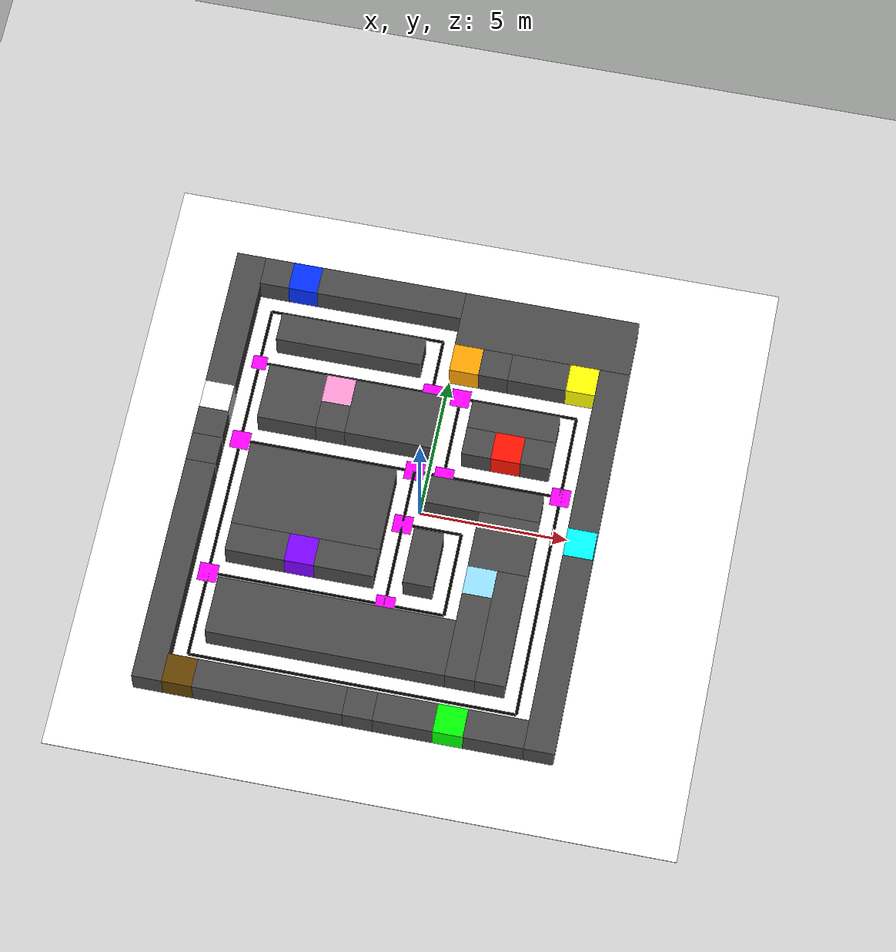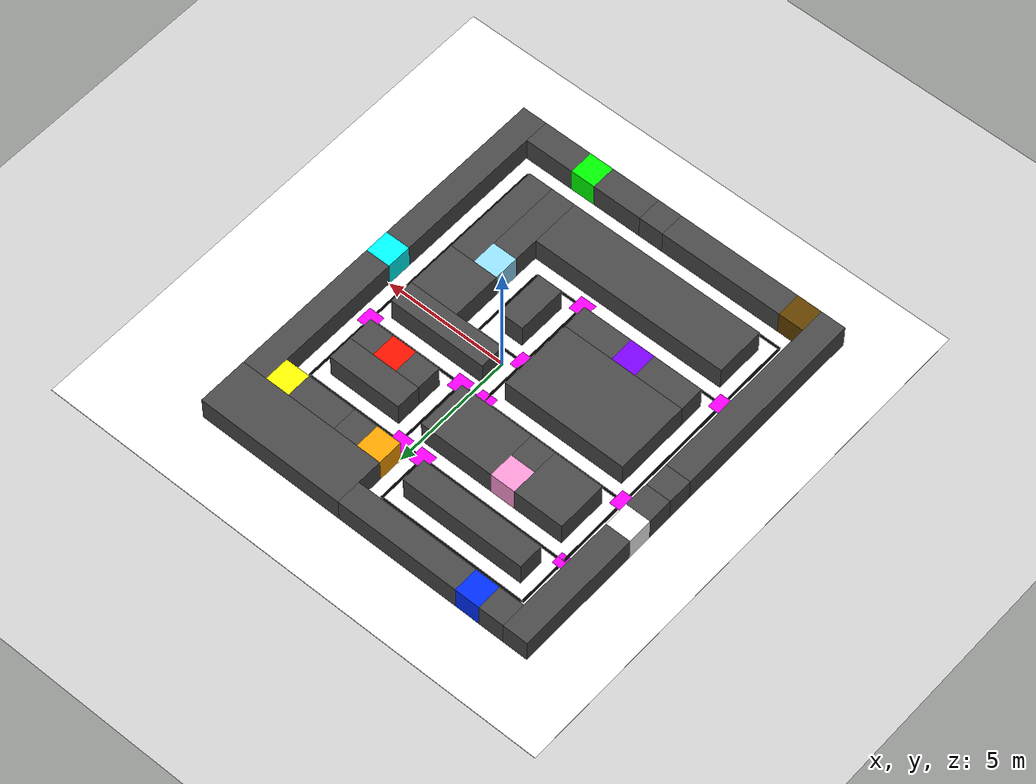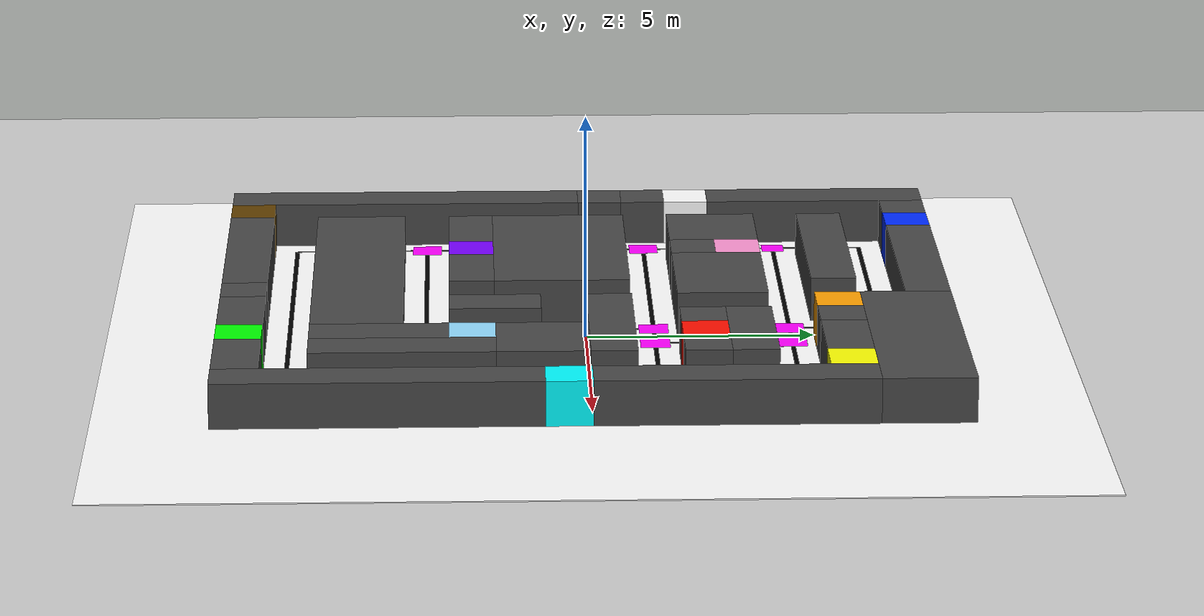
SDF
<sdf version="1.10">
 <world name="hello_world">
  <model name="ground_plane">
   <static>true</static>
   <link name="link">
    <collision name="collision">
     <geometry><plane><normal>0 0 1</normal><size>100 100</size></plane></geometry>
    </collision>
    <visual name="visual">
     <geometry><plane><normal>0 0 1</normal><size>100 100</size></plane></geometry>
     <material>
      <ambient>0.800000012 0.800000012 0.800000012 1</ambient>
      <diffuse>0.800000012 0.800000012 0.800000012 1</diffuse>
      <specular>0.800000012 0.800000012 0.800000012 1</specular>
     </material>
    </visual>
    <inertial>
     <mass>1</mass>
     <inertia><ixx>1</ixx><ixy>0</ixy><ixz>0</ixz><iyy>1</iyy><iyz>0</iyz><izz>1</izz></inertia>
    </inertial>
   </link>
  </model>
  <model name="box">
   <pose>-7.5 5.5 0.5 0 0 0</pose>
   <link name="box_link">
    <inertial>
     <inertia><ixx>0.16666</ixx><ixy>0</ixy><ixz>0</ixz><iyy>0.16666</iyy><iyz>0</iyz><izz>0.16666</izz></inertia>
     <mass>1</mass>
    </inertial>
    <collision name="box_collision"><geometry><box><size>1 5 1</size></box></geometry></collision>
    <visual name="box_visual">
     <geometry><box><size>1 5 1</size></box></geometry>
     <material>
      <ambient>0.300000012 0.300000012 0.300000012 1</ambient>
      <diffuse>0.277999997 0.277999997 0.277999997 1</diffuse>
      <specular>1 1 1 1</specular>
     </material>
    </visual>
   </link>
   <static>true</static>
  </model>
  <model name="PO">
   <pose>-7.5 2.5 0.5 0 0 0</pose>
   <link name="box_link">
    <inertial>
     <inertia><ixx>0.16666</ixx><ixy>0</ixy><ixz>0</ixz><iyy>0.16666</iyy><iyz>0</iyz><izz>0.16666</izz></inertia>
     <mass>1</mass>
    </inertial>
    <collision name="box_collision"><geometry><box><size>1 1 1</size></box></geometry></collision>
    <visual name="box_visual">
     <geometry><box><size>1 1 1</size></box></geometry>
     <material>
      <ambient>0.300000012 0.300000012 0.300000012 1</ambient>
      <diffuse>1 1 1 1</diffuse>
      <specular>1 1 1 1</specular>
     </material>
    </visual>
   </link>
   <static>true</static>
  </model>
  <model name="CHARGER_0">
   <pose>-7.5 0.5 0.5 4.6034300000052197e-07 4.603870000005235e-07 6.6837400000076367e-10</pose>
   <link name="box_link">
    <inertial>
     <inertia><ixx>0.16666</ixx><ixy>0</ixy><ixz>0</ixz><iyy>0.16666</iyy><iyz>0</iyz><izz>0.16666</izz></inertia>
     <mass>1</mass>
    </inertial>
    <collision name="box_collision"><geometry><box><size>1 1 1</size></box></geometry></collision>
    <visual name="box_visual">
     <geometry><box><size>1 1 1</size></box></geometry>
     <material>
      <ambient>0.300000012 0.300000012 0.300000012 1</ambient>
      <diffuse>0.277999997 0.277999997 0.277999997 1</diffuse>
      <specular>1 1 1 1</specular>
     </material>
    </visual>
   </link>
   <static>true</static>
  </model>
  <model name="box_2">
   <pose>-7.5 -4 0.5 4.6034300000052197e-07 4.603870000005235e-07 6.6837400000076367e-10</pose>
   <link name="box_link">
    <inertial>
     <inertia><ixx>0.16666</ixx><ixy>0</ixy><ixz>0</ixz><iyy>0.16666</iyy><iyz>0</iyz><izz>0.16666</izz></inertia>
     <mass>1</mass>
    </inertial>
    <collision name="box_collision"><geometry><box><size>1 8 1</size></box></geometry></collision>
    <visual name="box_visual">
     <geometry><box><size>1 8 1</size></box></geometry>
     <material>
      <ambient>0.300000012 0.300000012 0.300000012 1</ambient>
      <diffuse>0.277999997 0.277999997 0.277999997 1</diffuse>
      <specular>1 1 1 1</specular>
     </material>
    </visual>
   </link>
   <static>true</static>
  </model>
  <model name="box_3">
   <pose>-6.5 7.5 0.5 4.6034300000052197e-07 4.603870000005235e-07 6.6837400000076367e-10</pose>
   <link name="box_link">
    <inertial>
     <inertia><ixx>0.16666</ixx><ixy>0</ixy><ixz>0</ixz><iyy>0.16666</iyy><iyz>0</iyz><izz>0.16666</izz></inertia>
     <mass>1</mass>
    </inertial>
    <collision name="box_collision"><geometry><box><size>1 1 1</size></box></geometry></collision>
    <visual name="box_visual">
     <geometry><box><size>1 1 1</size></box></geometry>
     <material>
      <ambient>0.300000012 0.300000012 0.300000012 1</ambient>
      <diffuse>0.277999997 0.277999997 0.277999997 1</diffuse>
      <specular>1 1 1 1</specular>
     </material>
    </visual>
   </link>
   <static>true</static>
  </model>
  <model name="HOUSE_1">
   <pose>-5.5 7.5 0.5 4.6034300000052197e-07 4.603870000005235e-07 6.6837400000076367e-10</pose>
   <link name="box_link">
    <inertial>
     <inertia><ixx>0.16666</ixx><ixy>0</ixy><ixz>0</ixz><iyy>0.16666</iyy><iyz>0</iyz><izz>0.16666</izz></inertia>
     <mass>1</mass>
    </inertial>
    <collision name="box_collision"><geometry><box><size>1 1 1</size></box></geometry></collision>
    <visual name="box_visual">
     <geometry><box><size>1 1 1</size></box></geometry>
     <material>
      <ambient>0.300000012 0.300000012 0.300000012 1</ambient>
      <diffuse>0 0.172999993 1 1</diffuse>
      <specular>1 1 1 1</specular>
     </material>
    </visual>
   </link>
   <static>true</static>
  </model>
  <model name="box_5">
   <pose>-2.5 7.5 0.5 4.6034300000052197e-07 4.603870000005235e-07 6.6837400000076367e-10</pose>
   <link name="box_link">
    <inertial>
     <inertia><ixx>0.16666</ixx><ixy>0</ixy><ixz>0</ixz><iyy>0.16666</iyy><iyz>0</iyz><izz>0.16666</izz></inertia>
     <mass>1</mass>
    </inertial>
    <collision name="box_collision"><geometry><box><size>5 1 1</size></box></geometry></collision>
    <visual name="box_visual">
     <geometry><box><size>5 1 1</size></box></geometry>
     <material>
      <ambient>0.300000012 0.300000012 0.300000012 1</ambient>
      <diffuse>0.277999997 0.277999997 0.277999997 1</diffuse>
      <specular>1 1 1 1</specular>
     </material>
    </visual>
   </link>
   <static>true</static>
  </model>
  <model name="box_6">
   <pose>3 7 0.5 0 0 0</pose>
   <link name="box_link">
    <inertial>
     <inertia><ixx>0.16666</ixx><ixy>0</ixy><ixz>0</ixz><iyy>0.16666</iyy><iyz>0</iyz><izz>0.16666</izz></inertia>
     <mass>1</mass>
    </inertial>
    <collision name="box_collision"><geometry><box><size>6 2 1</size></box></geometry></collision>
    <visual name="box_visual">
     <geometry><box><size>6 2 1</size></box></geometry>
     <material>
      <ambient>0.300000012 0.300000012 0.300000012 1</ambient>
      <diffuse>0.277999997 0.277999997 0.277999997 1</diffuse>
      <specular>1 1 1 1</specular>
     </material>
    </visual>
   </link>
   <static>true</static>
  </model>
  <model name="box_7">
   <pose>5.5 3 0.5 1.6937494726750003e-43 0 0</pose>
   <link name="box_link">
    <inertial>
     <inertia><ixx>0.16666</ixx><ixy>0</ixy><ixz>0</ixz><iyy>0.16666</iyy><iyz>0</iyz><izz>0.16666</izz></inertia>
     <mass>1</mass>
    </inertial>
    <collision name="box_collision"><geometry><box><size>1 6 1</size></box></geometry></collision>
    <visual name="box_visual">
     <geometry><box><size>1 6 1</size></box></geometry>
     <material>
      <ambient>0.300000012 0.300000012 0.300000012 1</ambient>
      <diffuse>0.277999997 0.277999997 0.277999997 1</diffuse>
      <specular>1 1 1 1</specular>
     </material>
    </visual>
   </link>
   <static>true</static>
  </model>
  <model name="HOUSE_6">
   <pose>5.5 -0.5 0.5 4.6840416479999999e-44 0 0</pose>
   <link name="box_link">
    <inertial>
     <inertia><ixx>0.16666</ixx><ixy>0</ixy><ixz>0</ixz><iyy>0.16666</iyy><iyz>0</iyz><izz>0.16666</izz></inertia>
     <mass>1</mass>
    </inertial>
    <collision name="box_collision"><geometry><box><size>1 1 1</size></box></geometry></collision>
    <visual name="box_visual">
     <geometry><box><size>1 1 1</size></box></geometry>
     <material>
      <ambient>0.300000012 0.300000012 0.300000012 1</ambient>
      <diffuse>0 0.984000027 1 1</diffuse>
      <specular>1 1 1 1</specular>
     </material>
    </visual>
   </link>
   <static>true</static>
  </model>
  <model name="box_9">
   <pose>5.5 -4.5 0.5 -8.9888212590000021e-45 0 0</pose>
   <link name="box_link">
    <inertial>
     <inertia><ixx>0.16666</ixx><ixy>0</ixy><ixz>0</ixz><iyy>0.16666</iyy><iyz>0</iyz><izz>0.16666</izz></inertia>
     <mass>1</mass>
    </inertial>
    <collision name="box_collision"><geometry><box><size>1 7 1</size></box></geometry></collision>
    <visual name="box_visual">
     <geometry><box><size>1 7 1</size></box></geometry>
     <material>
      <ambient>0.300000012 0.300000012 0.300000012 1</ambient>
      <diffuse>0.277999997 0.277999997 0.277999997 1</diffuse>
      <specular>1 1 1 1</specular>
     </material>
    </visual>
   </link>
   <static>true</static>
  </model>
  <model name="box_10">
   <pose>4 -7.5 0.5 0 0 0</pose>
   <link name="box_link">
    <inertial>
     <inertia><ixx>0.16666</ixx><ixy>0</ixy><ixz>0</ixz><iyy>0.16666</iyy><iyz>0</iyz><izz>0.16666</izz></inertia>
     <mass>1</mass>
    </inertial>
    <collision name="box_collision"><geometry><box><size>2 1 1</size></box></geometry></collision>
    <visual name="box_visual">
     <geometry><box><size>2 1 1</size></box></geometry>
     <material>
      <ambient>0.300000012 0.300000012 0.300000012 1</ambient>
      <diffuse>0.277999997 0.277999997 0.277999997 1</diffuse>
      <specular>1 1 1 1</specular>
     </material>
    </visual>
   </link>
   <static>true</static>
  </model>
  <model name="HOUSE_9">
   <pose>2.5 -7.5 0.5 0 0 0</pose>
   <link name="box_link">
    <inertial>
     <inertia><ixx>0.16666</ixx><ixy>0</ixy><ixz>0</ixz><iyy>0.16666</iyy><iyz>0</iyz><izz>0.16666</izz></inertia>
     <mass>1</mass>
    </inertial>
    <collision name="box_collision"><geometry><box><size>1 1 1</size></box></geometry></collision>
    <visual name="box_visual">
     <geometry><box><size>1 1 1</size></box></geometry>
     <material>
      <ambient>0.300000012 0.300000012 0.300000012 1</ambient>
      <diffuse>0 1 0 1</diffuse>
      <specular>1 1 1 1</specular>
     </material>
    </visual>
   </link>
   <static>true</static>
  </model>
  <model name="box_12">
   <pose>1 -7.5 0.5 0 0 0</pose>
   <link name="box_link">
    <inertial>
     <inertia><ixx>0.16666</ixx><ixy>0</ixy><ixz>0</ixz><iyy>0.16666</iyy><iyz>0</iyz><izz>0.16666</izz></inertia>
     <mass>1</mass>
    </inertial>
    <collision name="box_collision"><geometry><box><size>2 1 1</size></box></geometry></collision>
    <visual name="box_visual">
     <geometry><box><size>2 1 1</size></box></geometry>
     <material>
      <ambient>0.300000012 0.300000012 0.300000012 1</ambient>
      <diffuse>0.277999997 0.277999997 0.277999997 1</diffuse>
      <specular>1 1 1 1</specular>
     </material>
    </visual>
   </link>
   <static>true</static>
  </model>
  <model name="CHARGER_2">
   <pose>-0.5 -7.5 0.5 0 0 0</pose>
   <link name="box_link">
    <inertial>
     <inertia><ixx>0.16666</ixx><ixy>0</ixy><ixz>0</ixz><iyy>0.16666</iyy><iyz>0</iyz><izz>0.16666</izz></inertia>
     <mass>1</mass>
    </inertial>
    <collision name="box_collision"><geometry><box><size>1 1 1</size></box></geometry></collision>
    <visual name="box_visual">
     <geometry><box><size>1 1 1</size></box></geometry>
     <material>
      <ambient>0.300000012 0.300000012 0.300000012 1</ambient>
      <diffuse>0.277999997 0.277999997 0.277999997 1</diffuse>
      <specular>1 1 1 1</specular>
     </material>
    </visual>
   </link>
   <static>true</static>
  </model>
  <model name="box_14">
   <pose>-3.5 -7.5 0.5 0 0 0</pose>
   <link name="box_link">
    <inertial>
     <inertia><ixx>0.16666</ixx><ixy>0</ixy><ixz>0</ixz><iyy>0.16666</iyy><iyz>0</iyz><izz>0.16666</izz></inertia>
     <mass>1</mass>
    </inertial>
    <collision name="box_collision"><geometry><box><size>5 1 1</size></box></geometry></collision>
    <visual name="box_visual">
     <geometry><box><size>5 1 1</size></box></geometry>
     <material>
      <ambient>0.300000012 0.300000012 0.300000012 1</ambient>
      <diffuse>0.277999997 0.277999997 0.277999997 1</diffuse>
      <specular>1 1 1 1</specular>
     </material>
    </visual>
   </link>
   <static>true</static>
  </model>
  <model name="HOUSE_7">
   <pose>-6.5 -7.5 0.5 0 0 0</pose>
   <link name="box_link">
    <inertial>
     <inertia><ixx>0.16666</ixx><ixy>0</ixy><ixz>0</ixz><iyy>0.16666</iyy><iyz>0</iyz><izz>0.16666</izz></inertia>
     <mass>1</mass>
    </inertial>
    <collision name="box_collision"><geometry><box><size>1 1 1</size></box></geometry></collision>
    <visual name="box_visual">
     <geometry><box><size>1 1 1</size></box></geometry>
     <material>
      <ambient>0.300000012 0.300000012 0.300000012 1</ambient>
      <diffuse>0.379999995 0.246999994 0 1</diffuse>
      <specular>1 1 1 1</specular>
     </material>
    </visual>
   </link>
   <static>true</static>
  </model>
  <model name="box_16">
   <pose>-3.5 5.5000000000000004 0.5 0 0 0</pose>
   <link name="box_link">
    <inertial>
     <inertia><ixx>0.16666</ixx><ixy>0</ixy><ixz>0</ixz><iyy>0.16666</iyy><iyz>0</iyz><izz>0.16666</izz></inertia>
     <mass>1</mass>
    </inertial>
    <collision name="box_collision"><geometry><box><size>5 1 1</size></box></geometry></collision>
    <visual name="box_visual">
     <geometry><box><size>5 1 1</size></box></geometry>
     <material>
      <ambient>0.300000012 0.300000012 0.300000012 1</ambient>
      <diffuse>0.277999997 0.277999997 0.277999997 1</diffuse>
      <specular>1 1 1 1</specular>
     </material>
    </visual>
   </link>
   <static>true</static>
  </model>
  <model name="HOUSE_3">
   <pose>0.5 5.5 0.5 0 0 0</pose>
   <link name="box_link">
    <inertial>
     <inertia><ixx>0.16666</ixx><ixy>0</ixy><ixz>0</ixz><iyy>0.16666</iyy><iyz>0</iyz><izz>0.16666</izz></inertia>
     <mass>1</mass>
    </inertial>
    <collision name="box_collision"><geometry><box><size>1 1 1</size></box></geometry></collision>
    <visual name="box_visual">
     <geometry><box><size>1 1 1</size></box></geometry>
     <material>
      <ambient>1 0.647000015 0 1</ambient>
      <diffuse>1 0.630999982 0 1</diffuse>
      <specular>1 1 1 1</specular>
     </material>
    </visual>
   </link>
   <static>true</static>
  </model>
  <model name="CHARGER_1">
   <pose>1.5 5.5 0.5 0 0 0</pose>
   <link name="box_link">
    <inertial>
     <inertia><ixx>0.16666</ixx><ixy>0</ixy><ixz>0</ixz><iyy>0.16666</iyy><iyz>0</iyz><izz>0.16666</izz></inertia>
     <mass>1</mass>
    </inertial>
    <collision name="box_collision"><geometry><box><size>1 1 1</size></box></geometry></collision>
    <visual name="box_visual">
     <geometry><box><size>1 1 1</size></box></geometry>
     <material>
      <ambient>0.300000012 0.300000012 0.300000012 1</ambient>
      <diffuse>0.277999997 0.277999997 0.277999997 1</diffuse>
      <specular>1 1 1 1</specular>
     </material>
    </visual>
   </link>
   <static>true</static>
  </model>
  <model name="box_19">
   <pose>3 5.5 0.5 0 0 0</pose>
   <link name="box_link">
    <inertial>
     <inertia><ixx>0.16666</ixx><ixy>0</ixy><ixz>0</ixz><iyy>0.16666</iyy><iyz>0</iyz><izz>0.16666</izz></inertia>
     <mass>1</mass>
    </inertial>
    <collision name="box_collision"><geometry><box><size>2 1 1</size></box></geometry></collision>
    <visual name="box_visual">
     <geometry><box><size>2 1 1</size></box></geometry>
     <material>
      <ambient>0.300000012 0.300000012 0.300000012 1</ambient>
      <diffuse>0.277999997 0.277999997 0.277999997 1</diffuse>
      <specular>1 1 1 1</specular>
     </material>
    </visual>
   </link>
   <static>true</static>
  </model>
  <model name="HOUSE_2">
   <pose>4.5 5.5 0.5 0 0 0</pose>
   <link name="box_link">
    <inertial>
     <inertia><ixx>0.16666</ixx><ixy>0</ixy><ixz>0</ixz><iyy>0.16666</iyy><iyz>0</iyz><izz>0.16666</izz></inertia>
     <mass>1</mass>
    </inertial>
    <collision name="box_collision"><geometry><box><size>1 1 1</size></box></geometry></collision>
    <visual name="box_visual">
     <geometry><box><size>1 1 1</size></box></geometry>
     <material>
      <ambient>0.300000012 0.300000012 0.300000012 1</ambient>
      <diffuse>0.991999984 1 0 1</diffuse>
      <specular>1 1 1 1</specular>
     </material>
    </visual>
   </link>
   <static>true</static>
  </model>
  <model name="box_21">
   <pose>2.5 3.5 0.5 0 0 0</pose>
   <link name="box_link">
    <inertial>
     <inertia><ixx>0.16666</ixx><ixy>0</ixy><ixz>0</ixz><iyy>0.16666</iyy><iyz>0</iyz><izz>0.16666</izz></inertia>
     <mass>1</mass>
    </inertial>
    <collision name="box_collision"><geometry><box><size>3 1 1</size></box></geometry></collision>
    <visual name="box_visual">
     <geometry><box><size>3 1 1</size></box></geometry>
     <material>
      <ambient>0.300000012 0.300000012 0.300000012 1</ambient>
      <diffuse>0.277999997 0.277999997 0.277999997 1</diffuse>
      <specular>1 1 1 1</specular>
     </material>
    </visual>
   </link>
   <static>true</static>
  </model>
  <model name="box_22">
   <pose>3.5 2.5 0.5 0 0 0</pose>
   <link name="box_link">
    <inertial>
     <inertia><ixx>0.16666</ixx><ixy>0</ixy><ixz>0</ixz><iyy>0.16666</iyy><iyz>0</iyz><izz>0.16666</izz></inertia>
     <mass>1</mass>
    </inertial>
    <collision name="box_collision"><geometry><box><size>1 1 1</size></box></geometry></collision>
    <visual name="box_visual">
     <geometry><box><size>1 1 1</size></box></geometry>
     <material>
      <ambient>0.300000012 0.300000012 0.300000012 1</ambient>
      <diffuse>0.277999997 0.277999997 0.277999997 1</diffuse>
      <specular>1 1 1 1</specular>
     </material>
    </visual>
   </link>
   <static>true</static>
  </model>
  <model name="HOUSE_5">
   <pose>2.5 2.5 0.5 0 0 0</pose>
   <link name="box_link">
    <inertial>
     <inertia><ixx>0.16666</ixx><ixy>0</ixy><ixz>0</ixz><iyy>0.16666</iyy><iyz>0</iyz><izz>0.16666</izz></inertia>
     <mass>1</mass>
    </inertial>
    <collision name="box_collision"><geometry><box><size>1 1 1</size></box></geometry></collision>
    <visual name="box_visual">
     <geometry><box><size>1 1 1</size></box></geometry>
     <material>
      <ambient>0.300000012 0.300000012 0.300000012 1</ambient>
      <diffuse>1 0.063000001 0 1</diffuse>
      <specular>1 1 1 1</specular>
     </material>
    </visual>
   </link>
   <static>true</static>
  </model>
  <model name="box_24">
   <pose>1.5 2.5 0.5 0 0 0</pose>
   <link name="box_link">
    <inertial>
     <inertia><ixx>0.16666</ixx><ixy>0</ixy><ixz>0</ixz><iyy>0.16666</iyy><iyz>0</iyz><izz>0.16666</izz></inertia>
     <mass>1</mass>
    </inertial>
    <collision name="box_collision"><geometry><box><size>1 1 1</size></box></geometry></collision>
    <visual name="box_visual">
     <geometry><box><size>1 1 1</size></box></geometry>
     <material>
      <ambient>0.300000012 0.300000012 0.300000012 1</ambient>
      <diffuse>0.277999997 0.277999997 0.277999997 1</diffuse>
      <specular>1 1 1 1</specular>
     </material>
    </visual>
   </link>
   <static>true</static>
  </model>
  <model name="box_25">
   <pose>-1.5 3 0.5 0 0 0</pose>
   <link name="box_link">
    <inertial>
     <inertia><ixx>0.16666</ixx><ixy>0</ixy><ixz>0</ixz><iyy>0.16666</iyy><iyz>0</iyz><izz>0.16666</izz></inertia>
     <mass>1</mass>
    </inertial>
    <collision name="box_collision"><geometry><box><size>3 2 1</size></box></geometry></collision>
    <visual name="box_visual">
     <geometry><box><size>3 2 1</size></box></geometry>
     <material>
      <ambient>0.300000012 0.300000012 0.300000012 1</ambient>
      <diffuse>0.277999997 0.277999997 0.277999997 1</diffuse>
      <specular>1 1 1 1</specular>
     </material>
    </visual>
   </link>
   <static>true</static>
  </model>
  <model name="HOUSE_4">
   <pose>-3.5 3.5 0.5 0 0 0</pose>
   <link name="box_link">
    <inertial>
     <inertia><ixx>0.16666</ixx><ixy>0</ixy><ixz>0</ixz><iyy>0.16666</iyy><iyz>0</iyz><izz>0.16666</izz></inertia>
     <mass>1</mass>
    </inertial>
    <collision name="box_collision"><geometry><box><size>1 1 1</size></box></geometry></collision>
    <visual name="box_visual">
     <geometry><box><size>1 1 1</size></box></geometry>
     <material>
      <ambient>0.300000012 0.300000012 0.300000012 1</ambient>
      <diffuse>0.987999976 0.583999991 0.819999993 1</diffuse>
      <specular>1 1 1 1</specular>
     </material>
    </visual>
   </link>
   <static>true</static>
  </model>
  <model name="box_27">
   <pose>-3.5 2.5 0.5 0 0 0</pose>
   <link name="box_link">
    <inertial>
     <inertia><ixx>0.16666</ixx><ixy>0</ixy><ixz>0</ixz><iyy>0.16666</iyy><iyz>0</iyz><izz>0.16666</izz></inertia>
     <mass>1</mass>
    </inertial>
    <collision name="box_collision"><geometry><box><size>1 1 1</size></box></geometry></collision>
    <visual name="box_visual">
     <geometry><box><size>1 1 1</size></box></geometry>
     <material>
      <ambient>0.300000012 0.300000012 0.300000012 1</ambient>
      <diffuse>0.277999997 0.277999997 0.277999997 1</diffuse>
      <specular>1 1 1 1</specular>
     </material>
    </visual>
   </link>
   <static>true</static>
  </model>
  <model name="box_28">
   <pose>-5 3 0.5 0 0 0</pose>
   <link name="box_link">
    <inertial>
     <inertia><ixx>0.16666</ixx><ixy>0</ixy><ixz>0</ixz><iyy>0.16666</iyy><iyz>0</iyz><izz>0.16666</izz></inertia>
     <mass>1</mass>
    </inertial>
    <collision name="box_collision"><geometry><box><size>2 2 1</size></box></geometry></collision>
    <visual name="box_visual">
     <geometry><box><size>2 2 1</size></box></geometry>
     <material>
      <ambient>0.300000012 0.300000012 0.300000012 1</ambient>
      <diffuse>0.277999997 0.277999997 0.277999997 1</diffuse>
      <specular>1 1 1 1</specular>
     </material>
    </visual>
   </link>
   <static>true</static>
  </model>
  <model name="box_29">
   <pose>-3.5 -0.5 0.5 0 0 0</pose>
   <link name="box_link">
    <inertial>
     <inertia><ixx>0.16666</ixx><ixy>0</ixy><ixz>0</ixz><iyy>0.16666</iyy><iyz>0</iyz><izz>0.16666</izz></inertia>
     <mass>1</mass>
    </inertial>
    <collision name="box_collision"><geometry><box><size>5 3 1</size></box></geometry></collision>
    <visual name="box_visual">
     <geometry><box><size>5 3 1</size></box></geometry>
     <material>
      <ambient>0.300000012 0.300000012 0.300000012 1</ambient>
      <diffuse>0.277999997 0.277999997 0.277999997 1</diffuse>
      <specular>1 1 1 1</specular>
     </material>
    </visual>
   </link>
   <static>true</static>
  </model>
  <model name="box_30">
   <pose>-5 -2.5 0.5 0 0 0</pose>
   <link name="box_link">
    <inertial>
     <inertia><ixx>0.16666</ixx><ixy>0</ixy><ixz>0</ixz><iyy>0.16666</iyy><iyz>0</iyz><izz>0.16666</izz></inertia>
     <mass>1</mass>
    </inertial>
    <collision name="box_collision"><geometry><box><size>2 1 1</size></box></geometry></collision>
    <visual name="box_visual">
     <geometry><box><size>2 1 1</size></box></geometry>
     <material>
      <ambient>0.300000012 0.300000012 0.300000012 1</ambient>
      <diffuse>0.277999997 0.277999997 0.277999997 1</diffuse>
      <specular>1 1 1 1</specular>
     </material>
    </visual>
   </link>
   <static>true</static>
  </model>
  <model name="HOUSE_8">
   <pose>-3.5 -2.5 0.5 0 0 0</pose>
   <link name="box_link">
    <inertial>
     <inertia><ixx>0.16666</ixx><ixy>0</ixy><ixz>0</ixz><iyy>0.16666</iyy><iyz>0</iyz><izz>0.16666</izz></inertia>
     <mass>1</mass>
    </inertial>
    <collision name="box_collision"><geometry><box><size>1 1 1</size></box></geometry></collision>
    <visual name="box_visual">
     <geometry><box><size>1 1 1</size></box></geometry>
     <material>
      <ambient>0.300000012 0.300000012 0.300000012 1</ambient>
      <diffuse>0.470999986 0 1 1</diffuse>
      <specular>1 1 1 1</specular>
     </material>
    </visual>
   </link>
   <static>true</static>
  </model>
  <model name="box_32">
   <pose>-2 -2.5 0.5 0 0 0</pose>
   <link name="box_link">
    <inertial>
     <inertia><ixx>0.16666</ixx><ixy>0</ixy><ixz>0</ixz><iyy>0.16666</iyy><iyz>0</iyz><izz>0.16666</izz></inertia>
     <mass>1</mass>
    </inertial>
    <collision name="box_collision"><geometry><box><size>2 1 1</size></box></geometry></collision>
    <visual name="box_visual">
     <geometry><box><size>2 1 1</size></box></geometry>
     <material>
      <ambient>0.300000012 0.300000012 0.300000012 1</ambient>
      <diffuse>0.277999997 0.277999997 0.277999997 1</diffuse>
      <specular>1 1 1 1</specular>
     </material>
    </visual>
   </link>
   <static>true</static>
  </model>
  <model name="box_33">
   <pose>0.5 -2 0.5 0 0 0</pose>
   <link name="box_link">
    <inertial>
     <inertia><ixx>0.16666</ixx><ixy>0</ixy><ixz>0</ixz><iyy>0.16666</iyy><iyz>0</iyz><izz>0.16666</izz></inertia>
     <mass>1</mass>
    </inertial>
    <collision name="box_collision"><geometry><box><size>1 2 1</size></box></geometry></collision>
    <visual name="box_visual">
     <geometry><box><size>1 2 1</size></box></geometry>
     <material>
      <ambient>0.300000012 0.300000012 0.300000012 1</ambient>
      <diffuse>0.277999997 0.277999997 0.277999997 1</diffuse>
      <specular>1 1 1 1</specular>
     </material>
    </visual>
   </link>
   <static>true</static>
  </model>
  <model name="box_34">
   <pose>2 0.5 0.5 0 0 0</pose>
   <link name="box_link">
    <inertial>
     <inertia><ixx>0.16666</ixx><ixy>0</ixy><ixz>0</ixz><iyy>0.16666</iyy><iyz>0</iyz><izz>0.16666</izz></inertia>
     <mass>1</mass>
    </inertial>
    <collision name="box_collision"><geometry><box><size>4 1 1</size></box></geometry></collision>
    <visual name="box_visual">
     <geometry><box><size>4 1 1</size></box></geometry>
     <material>
      <ambient>0.300000012 0.300000012 0.300000012 1</ambient>
      <diffuse>0.277999997 0.277999997 0.277999997 1</diffuse>
      <specular>1 1 1 1</specular>
     </material>
    </visual>
   </link>
   <static>true</static>
  </model>
  <model name="box_35">
   <pose>3 -1 0.5 0 0 0</pose>
   <link name="box_link">
    <inertial>
     <inertia><ixx>0.16666</ixx><ixy>0</ixy><ixz>0</ixz><iyy>0.16666</iyy><iyz>0</iyz><izz>0.16666</izz></inertia>
     <mass>1</mass>
    </inertial>
    <collision name="box_collision"><geometry><box><size>2 2 1</size></box></geometry></collision>
    <visual name="box_visual">
     <geometry><box><size>2 2 1</size></box></geometry>
     <material>
      <ambient>0.300000012 0.300000012 0.300000012 1</ambient>
      <diffuse>0.277999997 0.277999997 0.277999997 1</diffuse>
      <specular>1 1 1 1</specular>
     </material>
    </visual>
   </link>
   <static>true</static>
  </model>
  <model name="box_36">
   <pose>3.5 -4 0.5 0 0 0</pose>
   <link name="box_link">
    <inertial>
     <inertia><ixx>0.16666</ixx><ixy>0</ixy><ixz>0</ixz><iyy>0.16666</iyy><iyz>0</iyz><izz>0.16666</izz></inertia>
     <mass>1</mass>
    </inertial>
    <collision name="box_collision"><geometry><box><size>1 4 1</size></box></geometry></collision>
    <visual name="box_visual">
     <geometry><box><size>1 4 1</size></box></geometry>
     <material>
      <ambient>0.300000012 0.300000012 0.300000012 1</ambient>
      <diffuse>0.277999997 0.277999997 0.277999997 1</diffuse>
      <specular>1 1 1 1</specular>
     </material>
    </visual>
   </link>
   <static>true</static>
  </model>
  <model name="box_37">
   <pose>2.5 -4.5 0.5 0 0 0</pose>
   <link name="box_link">
    <inertial>
     <inertia><ixx>0.16666</ixx><ixy>0</ixy><ixz>0</ixz><iyy>0.16666</iyy><iyz>0</iyz><izz>0.16666</izz></inertia>
     <mass>1</mass>
    </inertial>
    <collision name="box_collision"><geometry><box><size>1 3 1</size></box></geometry></collision>
    <visual name="box_visual">
     <geometry><box><size>1 3 1</size></box></geometry>
     <material>
      <ambient>0.300000012 0.300000012 0.300000012 1</ambient>
      <diffuse>0.277999997 0.277999997 0.277999997 1</diffuse>
      <specular>1 1 1 1</specular>
     </material>
    </visual>
   </link>
   <static>true</static>
  </model>
  <model name="box_38">
   <pose>-2 -5 0.5 0 0 0</pose>
   <link name="box_link">
    <inertial>
     <inertia><ixx>0.16666</ixx><ixy>0</ixy><ixz>0</ixz><iyy>0.16666</iyy><iyz>0</iyz><izz>0.16666</izz></inertia>
     <mass>1</mass>
    </inertial>
    <collision name="box_collision"><geometry><box><size>8 2 1</size></box></geometry></collision>
    <visual name="box_visual">
     <geometry><box><size>8 2 1</size></box></geometry>
     <material>
      <ambient>0.300000012 0.300000012 0.300000012 1</ambient>
      <diffuse>0.277999997 0.277999997 0.277999997 1</diffuse>
      <specular>1 1 1 1</specular>
     </material>
    </visual>
   </link>
   <static>true</static>
  </model>
  <model name="HOUSE_10">
   <pose>2.5 -2.5 0.5 0 0 0</pose>
   <link name="box_link">
    <inertial>
     <inertia><ixx>0.16666</ixx><ixy>0</ixy><ixz>0</ixz><iyy>0.16666</iyy><iyz>0</iyz><izz>0.16666</izz></inertia>
     <mass>1</mass>
    </inertial>
    <collision name="box_collision"><geometry><box><size>1 1 1</size></box></geometry></collision>
    <visual name="box_visual">
     <geometry><box><size>1 1 1</size></box></geometry>
     <material>
      <ambient>0.300000012 0.300000012 0.300000012 1</ambient>
      <diffuse>0.573000014 0.862999976 1 1</diffuse>
      <specular>1 1 1 1</specular>
     </material>
    </visual>
   </link>
   <static>true</static>
  </model>
  <model name="line_0">
   <pose>-6.5 0 0 0 0 0</pose>
   <link name="box_link">
    <inertial>
     <inertia><ixx>0.16666</ixx><ixy>0</ixy><ixz>0</ixz><iyy>0.16666</iyy><iyz>0</iyz><izz>0.16666</izz></inertia>
     <mass>1</mass>
    </inertial>
    <collision name="box_collision">
     <geometry><box><size>0.10000000000000001 13 0.025000000000000001</size></box></geometry>
    </collision>
    <visual name="box_visual">
     <geometry><box><size>0.10000000000000001 13 0.025000000000000001</size></box></geometry>
     <material>
      <ambient>0.300000012 0.300000012 0.300000012 1</ambient>
      <diffuse>0 0 0 1</diffuse>
      <specular>1 1 1 1</specular>
     </material>
    </visual>
   </link>
   <static>true</static>
  </model>
  <model name="line_1">
   <pose>-1 -6.5 0 0 0 0</pose>
   <link name="box_link">
    <inertial>
     <inertia><ixx>0.16666</ixx><ixy>0</ixy><ixz>0</ixz><iyy>0.16666</iyy><iyz>0</iyz><izz>0.16666</izz></inertia>
     <mass>1</mass>
    </inertial>
    <collision name="box_collision">
     <geometry><box><size>11 0.10000000000000001 0.025000000000000001</size></box></geometry>
    </collision>
    <visual name="box_visual">
     <geometry><box><size>11 0.10000000000000001 0.025000000000000001</size></box></geometry>
     <material>
      <ambient>0.300000012 0.300000012 0.300000012 1</ambient>
      <diffuse>0 0 0 1</diffuse>
      <specular>1 1 1 1</specular>
     </material>
    </visual>
   </link>
   <static>true</static>
  </model>
  <model name="line_2">
   <pose>4.5 -1 0 0 0 0</pose>
   <link name="box_link">
    <inertial>
     <inertia><ixx>0.16666</ixx><ixy>0</ixy><ixz>0</ixz><iyy>0.16666</iyy><iyz>0</iyz><izz>0.16666</izz></inertia>
     <mass>1</mass>
    </inertial>
    <collision name="box_collision">
     <geometry><box><size>0.10000000000000001 11 0.025000000000000001</size></box></geometry>
    </collision>
    <visual name="box_visual">
     <geometry><box><size>0.10000000000000001 11 0.025000000000000001</size></box></geometry>
     <material>
      <ambient>0.300000012 0.300000012 0.300000012 1</ambient>
      <diffuse>0 0 0 1</diffuse>
      <specular>1 1 1 1</specular>
     </material>
    </visual>
   </link>
   <static>true</static>
  </model>
  <model name="line_3">
   <pose>-1 1.5 0 0 0 0</pose>
   <link name="box_link">
    <inertial>
     <inertia><ixx>0.16666</ixx><ixy>0</ixy><ixz>0</ixz><iyy>0.16666</iyy><iyz>0</iyz><izz>0.16666</izz></inertia>
     <mass>1</mass>
    </inertial>
    <collision name="box_collision">
     <geometry><box><size>11 0.10000000000000001 0.025000000000000001</size></box></geometry>
    </collision>
    <visual name="box_visual">
     <geometry><box><size>11 0.10000000000000001 0.025000000000000001</size></box></geometry>
     <material>
      <ambient>0.300000012 0.300000012 0.300000012 1</ambient>
      <diffuse>0 0 0 1</diffuse>
      <specular>1 1 1 1</specular>
     </material>
    </visual>
   </link>
   <static>true</static>
  </model>
  <model name="line_4">
   <pose>-2.5 -3.5 0 0 0 0</pose>
   <link name="box_link">
    <inertial>
     <inertia><ixx>0.16666</ixx><ixy>0</ixy><ixz>0</ixz><iyy>0.16666</iyy><iyz>0</iyz><izz>0.16666</izz></inertia>
     <mass>1</mass>
    </inertial>
    <collision name="box_collision">
     <geometry><box><size>8 0.10000000000000001 0.025000000000000001</size></box></geometry>
    </collision>
    <visual name="box_visual">
     <geometry><box><size>8 0.10000000000000001 0.025000000000000001</size></box></geometry>
     <material>
      <ambient>0.300000012 0.300000012 0.300000012 1</ambient>
      <diffuse>0 0 0 1</diffuse>
      <specular>1 1 1 1</specular>
     </material>
    </visual>
   </link>
   <static>true</static>
  </model>
  <model name="line_5">
   <pose>-0.5 -1 0 0 0 0</pose>
   <link name="box_link">
    <inertial>
     <inertia><ixx>0.16666</ixx><ixy>0</ixy><ixz>0</ixz><iyy>0.16666</iyy><iyz>0</iyz><izz>0.16666</izz></inertia>
     <mass>1</mass>
    </inertial>
    <collision name="box_collision">
     <geometry><box><size>0.10000000000000001 5 0.025000000000000001</size></box></geometry>
    </collision>
    <visual name="box_visual">
     <geometry><box><size>0.10000000000000001 5 0.025000000000000001</size></box></geometry>
     <material>
      <ambient>0.300000012 0.300000012 0.300000012 1</ambient>
      <diffuse>0 0 0 1</diffuse>
      <specular>1 1 1 1</specular>
     </material>
    </visual>
   </link>
   <static>true</static>
  </model>
  <model name="line_6">
   <pose>1.5 -2 0 0 0 0</pose>
   <link name="box_link">
    <inertial>
     <inertia><ixx>0.16666</ixx><ixy>0</ixy><ixz>0</ixz><iyy>0.16666</iyy><iyz>0</iyz><izz>0.16666</izz></inertia>
     <mass>1</mass>
    </inertial>
    <collision name="box_collision">
     <geometry><box><size>0.10000000000000001 3 0.025000000000000001</size></box></geometry>
    </collision>
    <visual name="box_visual">
     <geometry><box><size>0.10000000000000001 3 0.025000000000000001</size></box></geometry>
     <material>
      <ambient>0.300000012 0.300000012 0.300000012 1</ambient>
      <diffuse>0 0 0 1</diffuse>
      <specular>1 1 1 1</specular>
     </material>
    </visual>
   </link>
   <static>true</static>
  </model>
  <model name="line_7">
   <pose>0.5 -0.5 0 0 0 0</pose>
   <link name="box_link">
    <inertial>
     <inertia><ixx>0.16666</ixx><ixy>0</ixy><ixz>0</ixz><iyy>0.16666</iyy><iyz>0</iyz><izz>0.16666</izz></inertia>
     <mass>1</mass>
    </inertial>
    <collision name="box_collision">
     <geometry><box><size>2 0.10000000000000001 0.025000000000000001</size></box></geometry>
    </collision>
    <visual name="box_visual">
     <geometry><box><size>2 0.10000000000000001 0.025000000000000001</size></box></geometry>
     <material>
      <ambient>0.300000012 0.300000012 0.300000012 1</ambient>
      <diffuse>0 0 0 1</diffuse>
      <specular>1 1 1 1</specular>
     </material>
    </visual>
   </link>
   <static>true</static>
  </model>
  <model name="line_8">
   <pose>0.5 3 0 0 0 0</pose>
   <link name="box_link">
    <inertial>
     <inertia><ixx>0.16666</ixx><ixy>0</ixy><ixz>0</ixz><iyy>0.16666</iyy><iyz>0</iyz><izz>0.16666</izz></inertia>
     <mass>1</mass>
    </inertial>
    <collision name="box_collision">
     <geometry><box><size>0.10000000000000001 3 0.025000000000000001</size></box></geometry>
    </collision>
    <visual name="box_visual">
     <geometry><box><size>0.10000000000000001 3 0.025000000000000001</size></box></geometry>
     <material>
      <ambient>0.300000012 0.300000012 0.300000012 1</ambient>
      <diffuse>0 0 0 1</diffuse>
      <specular>1 1 1 1</specular>
     </material>
    </visual>
   </link>
   <static>true</static>
  </model>
  <model name="line_9">
   <pose>-1 4.5 0 0 0 0</pose>
   <link name="box_link">
    <inertial>
     <inertia><ixx>0.16666</ixx><ixy>0</ixy><ixz>0</ixz><iyy>0.16666</iyy><iyz>0</iyz><izz>0.16666</izz></inertia>
     <mass>1</mass>
    </inertial>
    <collision name="box_collision">
     <geometry><box><size>11 0.10000000000000001 0.025000000000000001</size></box></geometry>
    </collision>
    <visual name="box_visual">
     <geometry><box><size>11 0.10000000000000001 0.025000000000000001</size></box></geometry>
     <material>
      <ambient>0.300000012 0.300000012 0.300000012 1</ambient>
      <diffuse>0 0 0 1</diffuse>
      <specular>1 1 1 1</specular>
     </material>
    </visual>
   </link>
   <static>true</static>
  </model>
  <model name="line_10">
   <pose>-3.5 6.5 0 0 0 0</pose>
   <link name="box_link">
    <inertial>
     <inertia><ixx>0.16666</ixx><ixy>0</ixy><ixz>0</ixz><iyy>0.16666</iyy><iyz>0</iyz><izz>0.16666</izz></inertia>
     <mass>1</mass>
    </inertial>
    <collision name="box_collision">
     <geometry><box><size>6 0.10000000000000001 0.025000000000000001</size></box></geometry>
    </collision>
    <visual name="box_visual">
     <geometry><box><size>6 0.10000000000000001 0.025000000000000001</size></box></geometry>
     <material>
      <ambient>0.300000012 0.300000012 0.300000012 1</ambient>
      <diffuse>0 0 0 1</diffuse>
      <specular>1 1 1 1</specular>
     </material>
    </visual>
   </link>
   <static>true</static>
  </model>
  <model name="line_11">
   <pose>-0.5 5.5 0 0 0 0</pose>
   <link name="box_link">
    <inertial>
     <inertia><ixx>0.16666</ixx><ixy>0</ixy><ixz>0</ixz><iyy>0.16666</iyy><iyz>0</iyz><izz>0.16666</izz></inertia>
     <mass>1</mass>
    </inertial>
    <collision name="box_collision">
     <geometry><box><size>0.10000000000000001 2 0.025000000000000001</size></box></geometry>
    </collision>
    <visual name="box_visual">
     <geometry><box><size>0.10000000000000001 2 0.025000000000000001</size></box></geometry>
     <material>
      <ambient>0.300000012 0.300000012 0.300000012 1</ambient>
      <diffuse>0 0 0 1</diffuse>
      <specular>1 1 1 1</specular>
     </material>
    </visual>
   </link>
   <static>true</static>
  </model>
  <model name="floor">
   <link name="box_link">
    <inertial>
     <inertia><ixx>0.16666</ixx><ixy>0</ixy><ixz>0</ixz><iyy>0.16666</iyy><iyz>0</iyz><izz>0.16666</izz></inertia>
     <mass>1</mass>
    </inertial>
    <collision name="box_collision"><geometry><box><size>21 21 0.024</size></box></geometry></collision>
    <visual name="box_visual">
     <geometry><box><size>21 21 0.024</size></box></geometry>
     <material>
      <ambient>0.300000012 0.300000012 0.300000012 1</ambient>
      <diffuse>1 1 1 1</diffuse>
      <specular>1 1 1 1</specular>
     </material>
    </visual>
   </link>
   <static>true</static>
  </model>
  <model name="box_0">
   <pose>-7.5 1.5 0.5 0 0 0</pose>
   <link name="box_link">
    <inertial>
     <inertia><ixx>0.16666</ixx><ixy>0</ixy><ixz>0</ixz><iyy>0.16666</iyy><iyz>0</iyz><izz>0.16666</izz></inertia>
     <mass>1</mass>
    </inertial>
    <collision name="box_collision"><geometry><box><size>1 1 1</size></box></geometry></collision>
    <visual name="box_visual">
     <geometry><box><size>1 1 1</size></box></geometry>
     <material>
      <ambient>0.300000012 0.300000012 0.300000012 1</ambient>
      <diffuse>0.277999997 0.277999997 0.277999997 1</diffuse>
      <specular>1 1 1 1</specular>
     </material>
    </visual>
   </link>
   <static>false</static>
  </model>
  <model name="A">
   <pose>-6.5 1.5 0 0 0 0</pose>
   <link name="box_link">
    <inertial>
     <inertia><ixx>0.16666</ixx><ixy>0</ixy><ixz>0</ixz><iyy>0.16666</iyy><iyz>0</iyz><izz>0.16666</izz></inertia>
     <mass>1</mass>
    </inertial>
    <collision name="box_collision"><geometry><box><size>0.65 0.65 0.02501</size></box></geometry></collision>
    <visual name="box_visual">
     <geometry><box><size>0.65 0.65 0.02501</size></box></geometry>
     <material>
      <ambient>0.300000012 0.300000012 0.300000012 1</ambient>
      <diffuse>1 0 1 1</diffuse>
      <specular>1 1 1 1</specular>
     </material>
    </visual>
   </link>
   <static>true</static>
  </model>
  <model name="B">
   <pose>-6.5 -3.5 0 0 0 0</pose>
   <link name="box_link">
    <inertial>
     <inertia><ixx>0.16666</ixx><ixy>0</ixy><ixz>0</ixz><iyy>0.16666</iyy><iyz>0</iyz><izz>0.16666</izz></inertia>
     <mass>1</mass>
    </inertial>
    <collision name="box_collision"><geometry><box><size>0.65 0.65 0.02501</size></box></geometry></collision>
    <visual name="box_visual">
     <geometry><box><size>0.65 0.65 0.02501</size></box></geometry>
     <material>
      <ambient>0.300000012 0.300000012 0.300000012 1</ambient>
      <diffuse>1 0 1 1</diffuse>
      <specular>1 1 1 1</specular>
     </material>
    </visual>
   </link>
   <static>true</static>
  </model>
  <model name="C">
   <pose>-0.5 4.5 0 0 0 0</pose>
   <link name="box_link">
    <inertial>
     <inertia><ixx>0.16666</ixx><ixy>0</ixy><ixz>0</ixz><iyy>0.16666</iyy><iyz>0</iyz><izz>0.16666</izz></inertia>
     <mass>1</mass>
    </inertial>
    <collision name="box_collision"><geometry><box><size>0.65 0.65 0.02501</size></box></geometry></collision>
    <visual name="box_visual">
     <geometry><box><size>0.65 0.65 0.02501</size></box></geometry>
     <material>
      <ambient>0.300000012 0.300000012 0.300000012 1</ambient>
      <diffuse>1 0 1 1</diffuse>
      <specular>1 1 1 1</specular>
     </material>
    </visual>
   </link>
   <static>true</static>
  </model>
  <model name="D">
   <pose>-0.5 1.5 0 0 0 0</pose>
   <link name="box_link">
    <inertial>
     <inertia><ixx>0.16666</ixx><ixy>0</ixy><ixz>0</ixz><iyy>0.16666</iyy><iyz>0</iyz><izz>0.16666</izz></inertia>
     <mass>1</mass>
    </inertial>
    <collision name="box_collision"><geometry><box><size>0.65 0.65 0.02501</size></box></geometry></collision>
    <visual name="box_visual">
     <geometry><box><size>0.65 0.65 0.02501</size></box></geometry>
     <material>
      <ambient>0.300000012 0.300000012 0.300000012 1</ambient>
      <diffuse>1 0 1 1</diffuse>
      <specular>1 1 1 1</specular>
     </material>
    </visual>
   </link>
   <static>true</static>
  </model>
  <model name="E">
   <pose>-0.5 -0.5 0 0 0 0</pose>
   <link name="box_link">
    <inertial>
     <inertia><ixx>0.16666</ixx><ixy>0</ixy><ixz>0</ixz><iyy>0.16666</iyy><iyz>0</iyz><izz>0.16666</izz></inertia>
     <mass>1</mass>
    </inertial>
    <collision name="box_collision"><geometry><box><size>0.65 0.65 0.02501</size></box></geometry></collision>
    <visual name="box_visual">
     <geometry><box><size>0.65 0.65 0.02501</size></box></geometry>
     <material>
      <ambient>0.300000012 0.300000012 0.300000012 1</ambient>
      <diffuse>1 0 1 1</diffuse>
      <specular>1 1 1 1</specular>
     </material>
    </visual>
   </link>
   <static>true</static>
  </model>
  <model name="F">
   <pose>-0.5 -3.5 0 0 0 0</pose>
   <link name="box_link">
    <inertial>
     <inertia><ixx>0.16666</ixx><ixy>0</ixy><ixz>0</ixz><iyy>0.16666</iyy><iyz>0</iyz><izz>0.16666</izz></inertia>
     <mass>1</mass>
    </inertial>
    <collision name="box_collision"><geometry><box><size>0.65 0.65 0.02501</size></box></geometry></collision>
    <visual name="box_visual">
     <geometry><box><size>0.65 0.65 0.02501</size></box></geometry>
     <material>
      <ambient>0.300000012 0.300000012 0.300000012 1</ambient>
      <diffuse>1 0 1 1</diffuse>
      <specular>1 1 1 1</specular>
     </material>
    </visual>
   </link>
   <static>true</static>
  </model>
  <model name="G">
   <pose>0.5 4.5 0 0 0 0</pose>
   <link name="box_link">
    <inertial>
     <inertia><ixx>0.16666</ixx><ixy>0</ixy><ixz>0</ixz><iyy>0.16666</iyy><iyz>0</iyz><izz>0.16666</izz></inertia>
     <mass>1</mass>
    </inertial>
    <collision name="box_collision"><geometry><box><size>0.65 0.65 0.02501</size></box></geometry></collision>
    <visual name="box_visual">
     <geometry><box><size>0.65 0.65 0.02501</size></box></geometry>
     <material>
      <ambient>0.300000012 0.300000012 0.300000012 1</ambient>
      <diffuse>1 0 1 1</diffuse>
      <specular>1 1 1 1</specular>
     </material>
    </visual>
   </link>
   <static>true</static>
  </model>
  <model name="H">
   <pose>0.5 1.5 0 0 0 0</pose>
   <link name="box_link">
    <inertial>
     <inertia><ixx>0.16666</ixx><ixy>0</ixy><ixz>0</ixz><iyy>0.16666</iyy><iyz>0</iyz><izz>0.16666</izz></inertia>
     <mass>1</mass>
    </inertial>
    <collision name="box_collision"><geometry><box><size>0.65 0.65 0.02501</size></box></geometry></collision>
    <visual name="box_visual">
     <geometry><box><size>0.65 0.65 0.02501</size></box></geometry>
     <material>
      <ambient>0.300000012 0.300000012 0.300000012 1</ambient>
      <diffuse>1 0 1 1</diffuse>
      <specular>1 1 1 1</specular>
     </material>
    </visual>
   </link>
   <static>true</static>
  </model>
  <model name="I">
   <pose>4.5 1.5 0 0 0 0</pose>
   <link name="box_link">
    <inertial>
     <inertia><ixx>0.16666</ixx><ixy>0</ixy><ixz>0</ixz><iyy>0.16666</iyy><iyz>0</iyz><izz>0.16666</izz></inertia>
     <mass>1</mass>
    </inertial>
    <collision name="box_collision"><geometry><box><size>0.65 0.65 0.02501</size></box></geometry></collision>
    <visual name="box_visual">
     <geometry><box><size>0.65 0.65 0.02501</size></box></geometry>
     <material>
      <ambient>0.300000012 0.300000012 0.300000012 1</ambient>
      <diffuse>1 0 1 1</diffuse>
      <specular>1 1 1 1</specular>
     </material>
    </visual>
   </link>
   <static>true</static>
  </model>
  <model name="J">
   <pose>-6.5 4.5 0 0 0 0</pose>
   <link name="box_link">
    <inertial>
     <inertia><ixx>0.16666</ixx><ixy>0</ixy><ixz>0</ixz><iyy>0.16666</iyy><iyz>0</iyz><izz>0.16666</izz></inertia>
     <mass>1</mass>
    </inertial>
    <collision name="box_collision"><geometry><box><size>0.5 0.5 0.02501</size></box></geometry></collision>
    <visual name="box_visual">
     <geometry><box><size>0.5 0.5 0.02501</size></box></geometry>
     <material>
      <ambient>0.300000012 0.300000012 0.300000012 1</ambient>
      <diffuse>1 0 1 1</diffuse>
      <specular>1 1 1 1</specular>
     </material>
    </visual>
   </link>
   <static>true</static>
  </model>
 </world>
</sdf>
